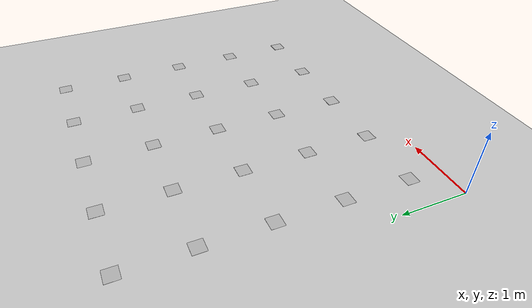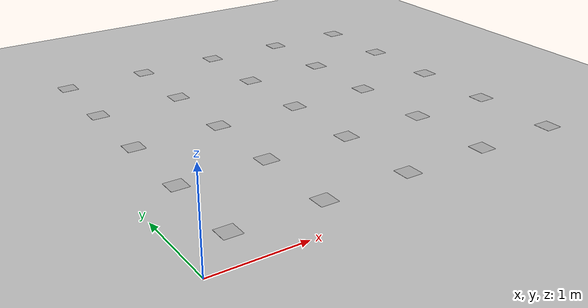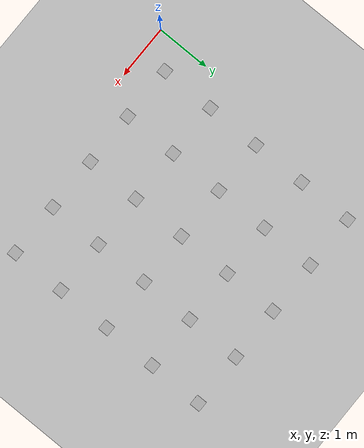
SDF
<sdf version="1.6">
 <world name="default">
  <light name="sun" type="directional">
   <pose>0 0 10 0 -0 0</pose>
   <diffuse>0.8 0.8 0.8 1</diffuse>
   <specular>0.2 0.2 0.2 1</specular>
   <attenuation>
    <range>1000</range>
    <constant>0.9</constant>
    <linear>0.01</linear>
    <quadratic>0.001</quadratic>
   </attenuation>
   <direction>-0.5 0.1 -0.9</direction>
  </light>
  <model name="ground_plane">
   <static>1</static>
   <link name="link">
    <collision name="collision">
     <geometry><plane><normal>0 0 1</normal><size>100 100</size></plane></geometry>
     <surface><friction><ode><mu>100</mu><mu2>50</mu2></ode></friction></surface>
    </collision>
    <visual name="visual">
     <cast_shadows>0</cast_shadows>
     <transparency>0.5</transparency>
     <geometry><plane><normal>0 0 1</normal><size>100 100</size></plane></geometry>
     <material>
      <script><uri>file://media/materials/scripts/gazebo.material</uri><name>Gazebo/Grey</name></script>
     </material>
    </visual>
   </link>
  </model>
  <gravity>0 0 -9.8</gravity>
  <magnetic_field>6e-06 2.3e-05 -4.2e-05</magnetic_field>
  <atmosphere type="adiabatic"/>
  <physics name="default_physics" default="0" type="ode">
   <max_step_size>0.001</max_step_size>
   <real_time_factor>1</real_time_factor>
   <real_time_update_rate>1000</real_time_update_rate>
  </physics>
  <scene><ambient>0.4 0.4 0.4 1</ambient><background>0.7 0.7 0.7 1</background><shadows>1</shadows></scene>
  <spherical_coordinates>
   <surface_model>EARTH_WGS84</surface_model>
   <latitude_deg>0</latitude_deg>
   <longitude_deg>0</longitude_deg>
   <elevation>0</elevation>
   <heading_deg>0</heading_deg>
  </spherical_coordinates>
  <model name="unit_box_0">
   <pose>1.5 0.5 0.000844 3e-06 -0 0.00054</pose>
   <link name="link">
    <inertial>
     <mass>1</mass>
     <inertia>
      <ixx>0.166667</ixx>
      <ixy>0</ixy>
      <ixz>0</ixz>
      <iyy>0.166667</iyy>
      <iyz>0</iyz>
      <izz>0.166667</izz>
     </inertia>
    </inertial>
    <collision name="collision"><geometry><box><size>0.2 0.2 0.001688</size></box></geometry></collision>
    <visual name="visual">
     <geometry><box><size>0.2 0.2 0.001688</size></box></geometry>
     <material>
      <script><uri>file://textures/aruco_00026.material</uri><name>image/aruco_00026</name></script>
     </material>
    </visual>
   </link>
  </model>
  <model name="unit_box_0_clone">
   <pose>2.5 0.5 0.000844 0 3e-06 0.000538</pose>
   <link name="link">
    <inertial>
     <mass>1</mass>
     <inertia>
      <ixx>0.166667</ixx>
      <ixy>0</ixy>
      <ixz>0</ixz>
      <iyy>0.166667</iyy>
      <iyz>0</iyz>
      <izz>0.166667</izz>
     </inertia>
    </inertial>
    <collision name="collision"><geometry><box><size>0.2 0.2 0.001688</size></box></geometry></collision>
    <visual name="visual">
     <geometry><box><size>0.2 0.2 0.001688</size></box></geometry>
     <material>
      <script><uri>file://textures/aruco_00070.material</uri><name>image/aruco_00070</name></script>
     </material>
    </visual>
   </link>
  </model>
  <model name="unit_box_0_clone_0">
   <pose>3.5 0.5 0.000844 0 3e-06 0.00054</pose>
   <link name="link">
    <inertial>
     <mass>1</mass>
     <inertia>
      <ixx>0.166667</ixx>
      <ixy>0</ixy>
      <ixz>0</ixz>
      <iyy>0.166667</iyy>
      <iyz>0</iyz>
      <izz>0.166667</izz>
     </inertia>
    </inertial>
    <collision name="collision"><geometry><box><size>0.2 0.2 0.001688</size></box></geometry></collision>
    <visual name="visual">
     <geometry><box><size>0.2 0.2 0.001688</size></box></geometry>
     <material>
      <script><uri>file://textures/aruco_00114.material</uri><name>image/aruco_00114</name></script>
     </material>
    </visual>
   </link>
  </model>
  <model name="unit_box_0_clone_1">
   <pose>4.5 0.5 0.000844 0 3e-06 0.000538</pose>
   <link name="link">
    <inertial>
     <mass>1</mass>
     <inertia>
      <ixx>0.166667</ixx>
      <ixy>0</ixy>
      <ixz>0</ixz>
      <iyy>0.166667</iyy>
      <iyz>0</iyz>
      <izz>0.166667</izz>
     </inertia>
    </inertial>
    <collision name="collision"><geometry><box><size>0.2 0.2 0.001688</size></box></geometry></collision>
    <visual name="visual">
     <geometry><box><size>0.2 0.2 0.001688</size></box></geometry>
     <material>
      <script><uri>file://textures/aruco_00157.material</uri><name>image/aruco_00157</name></script>
     </material>
    </visual>
   </link>
  </model>
  <model name="unit_box_0_clone_2">
   <pose>4.5 1.5 0.000844 0 3e-06 0.000538</pose>
   <link name="link">
    <inertial>
     <mass>1</mass>
     <inertia>
      <ixx>0.166667</ixx>
      <ixy>0</ixy>
      <ixz>0</ixz>
      <iyy>0.166667</iyy>
      <iyz>0</iyz>
      <izz>0.166667</izz>
     </inertia>
    </inertial>
    <collision name="collision"><geometry><box><size>0.2 0.2 0.001688</size></box></geometry></collision>
    <visual name="visual">
     <geometry><box><size>0.2 0.2 0.001688</size></box></geometry>
     <material>
      <script><uri>file://textures/aruco_00203.material</uri><name>image/aruco_00203</name></script>
     </material>
    </visual>
   </link>
  </model>
  <model name="unit_box_0_clone_3">
   <pose>3.5 1.5 0.000844 -0 -3e-06 0.00054</pose>
   <link name="link">
    <inertial>
     <mass>1</mass>
     <inertia>
      <ixx>0.166667</ixx>
      <ixy>0</ixy>
      <ixz>0</ixz>
      <iyy>0.166667</iyy>
      <iyz>0</iyz>
      <izz>0.166667</izz>
     </inertia>
    </inertial>
    <collision name="collision"><geometry><box><size>0.2 0.2 0.001688</size></box></geometry></collision>
    <visual name="visual">
     <geometry><box><size>0.2 0.2 0.001688</size></box></geometry>
     <material>
      <script><uri>file://textures/aruco_00248.material</uri><name>image/aruco_00248</name></script>
     </material>
    </visual>
   </link>
  </model>
  <model name="unit_box_0_clone_4">
   <pose>2.5 1.5 0.000844 -0 -3e-06 0.00054</pose>
   <link name="link">
    <inertial>
     <mass>1</mass>
     <inertia>
      <ixx>0.166667</ixx>
      <ixy>0</ixy>
      <ixz>0</ixz>
      <iyy>0.166667</iyy>
      <iyz>0</iyz>
      <izz>0.166667</izz>
     </inertia>
    </inertial>
    <collision name="collision"><geometry><box><size>0.2 0.2 0.001688</size></box></geometry></collision>
    <visual name="visual">
     <geometry><box><size>0.2 0.2 0.001688</size></box></geometry>
     <material>
      <script><uri>file://textures/aruco_00310.material</uri><name>image/aruco_00310</name></script>
     </material>
    </visual>
   </link>
  </model>
  <model name="unit_box_0_clone_5">
   <pose>1.5 1.5 0.000844 -0 -3e-06 0.000538</pose>
   <link name="link">
    <inertial>
     <mass>1</mass>
     <inertia>
      <ixx>0.166667</ixx>
      <ixy>0</ixy>
      <ixz>0</ixz>
      <iyy>0.166667</iyy>
      <iyz>0</iyz>
      <izz>0.166667</izz>
     </inertia>
    </inertial>
    <collision name="collision"><geometry><box><size>0.2 0.2 0.001688</size></box></geometry></collision>
    <visual name="visual">
     <geometry><box><size>0.2 0.2 0.001688</size></box></geometry>
     <material>
      <script><uri>file://textures/aruco_00353.material</uri><name>image/aruco_00353</name></script>
     </material>
    </visual>
   </link>
  </model>
  <model name="unit_box_0_clone_6">
   <pose>0.5 1.5 0.000844 -0 -3e-06 0.00054</pose>
   <link name="link">
    <inertial>
     <mass>1</mass>
     <inertia>
      <ixx>0.166667</ixx>
      <ixy>0</ixy>
      <ixz>0</ixz>
      <iyy>0.166667</iyy>
      <iyz>0</iyz>
      <izz>0.166667</izz>
     </inertia>
    </inertial>
    <collision name="collision"><geometry><box><size>0.2 0.2 0.001688</size></box></geometry></collision>
    <visual name="visual">
     <geometry><box><size>0.2 0.2 0.001688</size></box></geometry>
     <material>
      <script><uri>file://textures/aruco_00392.material</uri><name>image/aruco_00392</name></script>
     </material>
    </visual>
   </link>
  </model>
  <model name="unit_box_0_clone_8">
   <pose>0.5 2.5 0.000844 -0 -3e-06 0.00054</pose>
   <link name="link">
    <inertial>
     <mass>1</mass>
     <inertia>
      <ixx>0.166667</ixx>
      <ixy>0</ixy>
      <ixz>0</ixz>
      <iyy>0.166667</iyy>
      <iyz>0</iyz>
      <izz>0.166667</izz>
     </inertia>
    </inertial>
    <collision name="collision"><geometry><box><size>0.2 0.2 0.001688</size></box></geometry></collision>
    <visual name="visual">
     <geometry><box><size>0.2 0.2 0.001688</size></box></geometry>
     <material>
      <script><uri>file://textures/aruco_00432.material</uri><name>image/aruco_00432</name></script>
     </material>
    </visual>
   </link>
  </model>
  <model name="unit_box_0_clone_9">
   <pose>1.5 2.5 0.000844 -0 -3e-06 0.000538</pose>
   <link name="link">
    <inertial>
     <mass>1</mass>
     <inertia>
      <ixx>0.166667</ixx>
      <ixy>0</ixy>
      <ixz>0</ixz>
      <iyy>0.166667</iyy>
      <iyz>0</iyz>
      <izz>0.166667</izz>
     </inertia>
    </inertial>
    <collision name="collision"><geometry><box><size>0.2 0.2 0.001688</size></box></geometry></collision>
    <visual name="visual">
     <geometry><box><size>0.2 0.2 0.001688</size></box></geometry>
     <material>
      <script><uri>file://textures/aruco_00472.material</uri><name>image/aruco_00472</name></script>
     </material>
    </visual>
   </link>
  </model>
  <model name="unit_box_0_clone_10">
   <pose>2.5 2.5 0.000844 0 3e-06 0.000538</pose>
   <link name="link">
    <inertial>
     <mass>1</mass>
     <inertia>
      <ixx>0.166667</ixx>
      <ixy>0</ixy>
      <ixz>0</ixz>
      <iyy>0.166667</iyy>
      <iyz>0</iyz>
      <izz>0.166667</izz>
     </inertia>
    </inertial>
    <collision name="collision"><geometry><box><size>0.2 0.2 0.001688</size></box></geometry></collision>
    <visual name="visual">
     <geometry><box><size>0.2 0.2 0.001688</size></box></geometry>
     <material>
      <script><uri>file://textures/aruco_00514.material</uri><name>image/aruco_00514</name></script>
     </material>
    </visual>
   </link>
  </model>
  <model name="unit_box_0_clone_11">
   <pose>3.5 2.5 0.000844 -3e-06 0 0.00054</pose>
   <link name="link">
    <inertial>
     <mass>1</mass>
     <inertia>
      <ixx>0.166667</ixx>
      <ixy>0</ixy>
      <ixz>0</ixz>
      <iyy>0.166667</iyy>
      <iyz>0</iyz>
      <izz>0.166667</izz>
     </inertia>
    </inertial>
    <collision name="collision"><geometry><box><size>0.2 0.2 0.001688</size></box></geometry></collision>
    <visual name="visual">
     <geometry><box><size>0.2 0.2 0.001688</size></box></geometry>
     <material>
      <script><uri>file://textures/aruco_00558.material</uri><name>image/aruco_00558</name></script>
     </material>
    </visual>
   </link>
  </model>
  <model name="unit_box_0_clone_12">
   <pose>3.5 3.5 0.000844 0 3e-06 0.000538</pose>
   <link name="link">
    <inertial>
     <mass>1</mass>
     <inertia>
      <ixx>0.166667</ixx>
      <ixy>0</ixy>
      <ixz>0</ixz>
      <iyy>0.166667</iyy>
      <iyz>0</iyz>
      <izz>0.166667</izz>
     </inertia>
    </inertial>
    <collision name="collision"><geometry><box><size>0.2 0.2 0.001688</size></box></geometry></collision>
    <visual name="visual">
     <geometry><box><size>0.2 0.2 0.001688</size></box></geometry>
     <material>
      <script><uri>file://textures/aruco_00598.material</uri><name>image/aruco_00598</name></script>
     </material>
    </visual>
   </link>
  </model>
  <model name="unit_box_0_clone_13">
   <pose>2.5 3.5 0.000844 -0 -3e-06 0.00054</pose>
   <link name="link">
    <inertial>
     <mass>1</mass>
     <inertia>
      <ixx>0.166667</ixx>
      <ixy>0</ixy>
      <ixz>0</ixz>
      <iyy>0.166667</iyy>
      <iyz>0</iyz>
      <izz>0.166667</izz>
     </inertia>
    </inertial>
    <collision name="collision"><geometry><box><size>0.2 0.2 0.001688</size></box></geometry></collision>
    <visual name="visual">
     <geometry><box><size>0.2 0.2 0.001688</size></box></geometry>
     <material>
      <script><uri>file://textures/aruco_00658.material</uri><name>image/aruco_00658</name></script>
     </material>
    </visual>
   </link>
  </model>
  <model name="unit_box_0_clone_14">
   <pose>1.5 3.5 0.000844 -0 -3e-06 0.000538</pose>
   <link name="link">
    <inertial>
     <mass>1</mass>
     <inertia>
      <ixx>0.166667</ixx>
      <ixy>0</ixy>
      <ixz>0</ixz>
      <iyy>0.166667</iyy>
      <iyz>0</iyz>
      <izz>0.166667</izz>
     </inertia>
    </inertial>
    <collision name="collision"><geometry><box><size>0.2 0.2 0.001688</size></box></geometry></collision>
    <visual name="visual">
     <geometry><box><size>0.2 0.2 0.001688</size></box></geometry>
     <material>
      <script><uri>file://textures/aruco_00722.material</uri><name>image/aruco_00722</name></script>
     </material>
    </visual>
   </link>
  </model>
  <model name="unit_box_0_clone_15">
   <pose>0.5 3.5 0.000844 -0 -3e-06 0.00054</pose>
   <link name="link">
    <inertial>
     <mass>1</mass>
     <inertia>
      <ixx>0.166667</ixx>
      <ixy>0</ixy>
      <ixz>0</ixz>
      <iyy>0.166667</iyy>
      <iyz>0</iyz>
      <izz>0.166667</izz>
     </inertia>
    </inertial>
    <collision name="collision"><geometry><box><size>0.2 0.2 0.001688</size></box></geometry></collision>
    <visual name="visual">
     <geometry><box><size>0.2 0.2 0.001688</size></box></geometry>
     <material>
      <script><uri>file://textures/aruco_00789.material</uri><name>image/aruco_00789</name></script>
     </material>
    </visual>
   </link>
  </model>
  <model name="unit_box_0_clone_16">
   <pose>4.5 2.5 0.000844 0 3e-06 0.000546</pose>
   <link name="link">
    <inertial>
     <mass>1</mass>
     <inertia>
      <ixx>0.166667</ixx>
      <ixy>0</ixy>
      <ixz>0</ixz>
      <iyy>0.166667</iyy>
      <iyz>0</iyz>
      <izz>0.166667</izz>
     </inertia>
    </inertial>
    <collision name="collision"><geometry><box><size>0.2 0.2 0.001688</size></box></geometry></collision>
    <visual name="visual">
     <geometry><box><size>0.2 0.2 0.001688</size></box></geometry>
     <material>
      <script><uri>file://textures/aruco_00822.material</uri><name>image/aruco_00822</name></script>
     </material>
    </visual>
   </link>
  </model>
  <model name="unit_box_0_clone_17">
   <pose>4.5 3.5 0.000844 0 3e-06 0.000582</pose>
   <link name="link">
    <inertial>
     <mass>1</mass>
     <inertia>
      <ixx>0.166667</ixx>
      <ixy>0</ixy>
      <ixz>0</ixz>
      <iyy>0.166667</iyy>
      <iyz>0</iyz>
      <izz>0.166667</izz>
     </inertia>
    </inertial>
    <collision name="collision"><geometry><box><size>0.2 0.2 0.001688</size></box></geometry></collision>
    <visual name="visual">
     <geometry><box><size>0.2 0.2 0.001688</size></box></geometry>
     <material>
      <script><uri>file://textures/aruco_00861.material</uri><name>image/aruco_00861</name></script>
     </material>
    </visual>
   </link>
  </model>
  <model name="unit_box_0_clone_18">
   <pose>0.5 4.5 0.000844 0 3e-06 0.00054</pose>
   <link name="link">
    <inertial>
     <mass>1</mass>
     <inertia>
      <ixx>0.166667</ixx>
      <ixy>0</ixy>
      <ixz>0</ixz>
      <iyy>0.166667</iyy>
      <iyz>0</iyz>
      <izz>0.166667</izz>
     </inertia>
    </inertial>
    <collision name="collision"><geometry><box><size>0.2 0.2 0.001688</size></box></geometry></collision>
    <visual name="visual">
     <geometry><box><size>0.2 0.2 0.001688</size></box></geometry>
     <material>
      <script><uri>file://textures/aruco_00901.material</uri><name>image/aruco_00901</name></script>
     </material>
    </visual>
   </link>
  </model>
  <model name="unit_box_0_clone_19">
   <pose>1.5 4.5 0.000844 -0 -3e-06 0.00054</pose>
   <link name="link">
    <inertial>
     <mass>1</mass>
     <inertia>
      <ixx>0.166667</ixx>
      <ixy>0</ixy>
      <ixz>0</ixz>
      <iyy>0.166667</iyy>
      <iyz>0</iyz>
      <izz>0.166667</izz>
     </inertia>
    </inertial>
    <collision name="collision"><geometry><box><size>0.2 0.2 0.001688</size></box></geometry></collision>
    <visual name="visual">
     <geometry><box><size>0.2 0.2 0.001688</size></box></geometry>
     <material>
      <script><uri>file://textures/aruco_00930.material</uri><name>image/aruco_00930</name></script>
     </material>
    </visual>
   </link>
  </model>
  <model name="unit_box_0_clone_20">
   <pose>2.5 4.5 0.000844 0 3e-06 0.000538</pose>
   <link name="link">
    <inertial>
     <mass>1</mass>
     <inertia>
      <ixx>0.166667</ixx>
      <ixy>0</ixy>
      <ixz>0</ixz>
      <iyy>0.166667</iyy>
      <iyz>0</iyz>
      <izz>0.166667</izz>
     </inertia>
    </inertial>
    <collision name="collision"><geometry><box><size>0.2 0.2 0.001688</size></box></geometry></collision>
    <visual name="visual">
     <geometry><box><size>0.2 0.2 0.001688</size></box></geometry>
     <material>
      <script><uri>file://textures/aruco_00962.material</uri><name>image/aruco_00962</name></script>
     </material>
    </visual>
   </link>
  </model>
  <model name="unit_box_0_clone_21">
   <pose>3.5 4.5 0.000844 0 -3e-06 0.000542</pose>
   <link name="link">
    <inertial>
     <mass>1</mass>
     <inertia>
      <ixx>0.166667</ixx>
      <ixy>0</ixy>
      <ixz>0</ixz>
      <iyy>0.166667</iyy>
      <iyz>0</iyz>
      <izz>0.166667</izz>
     </inertia>
    </inertial>
    <collision name="collision"><geometry><box><size>0.2 0.2 0.001688</size></box></geometry></collision>
    <visual name="visual">
     <geometry><box><size>0.2 0.2 0.001688</size></box></geometry>
     <material>
      <script><uri>file://textures/aruco_01002.material</uri><name>image/aruco_01002</name></script>
     </material>
    </visual>
   </link>
  </model>
  <light name="user_spot_light_0" type="spot">
   <pose>2.56516 2.43033 10 0 -0 0</pose>
   <diffuse>0.5 0.5 0.5 1</diffuse>
   <specular>0.1 0.1 0.1 1</specular>
   <direction>0 0 -1</direction>
   <attenuation>
    <range>20</range>
    <constant>0.5</constant>
    <linear>0.01</linear>
    <quadratic>0.001</quadratic>
   </attenuation>
   <cast_shadows>0</cast_shadows>
   <spot><inner_angle>0.6</inner_angle><outer_angle>1</outer_angle><falloff>1</falloff></spot>
  </light>
  <model name="unit_box_0_clone_22">
   <pose>0.5 0.5 0.000844 -0 -3e-06 0.000538</pose>
   <link name="link">
    <inertial>
     <mass>1</mass>
     <inertia>
      <ixx>0.166667</ixx>
      <ixy>0</ixy>
      <ixz>0</ixz>
      <iyy>0.166667</iyy>
      <iyz>0</iyz>
      <izz>0.166667</izz>
     </inertia>
    </inertial>
    <collision name="collision"><geometry><box><size>0.2 0.2 0.001688</size></box></geometry></collision>
    <visual name="visual">
     <geometry><box><size>0.2 0.2 0.001688</size></box></geometry>
     <material>
      <script><uri>file://textures/aruco_00010.material</uri><name>image/aruco_00010</name></script>
     </material>
    </visual>
   </link>
  </model>
  <model name="unit_box_0_clone_23">
   <pose>4.5 4.5 0.000844 3e-06 -0 0.00054</pose>
   <link name="link">
    <inertial>
     <mass>1</mass>
     <inertia>
      <ixx>0.166667</ixx>
      <ixy>0</ixy>
      <ixz>0</ixz>
      <iyy>0.166667</iyy>
      <iyz>0</iyz>
      <izz>0.166667</izz>
     </inertia>
    </inertial>
    <collision name="collision"><geometry><box><size>0.2 0.2 0.001688</size></box></geometry></collision>
    <visual name="visual">
     <geometry><box><size>0.2 0.2 0.001688</size></box></geometry>
     <material>
      <script><uri>file://textures/aruco_01022.material</uri><name>image/aruco_01022</name></script>
     </material>
    </visual>
   </link>
  </model>
 </world>
</sdf>
